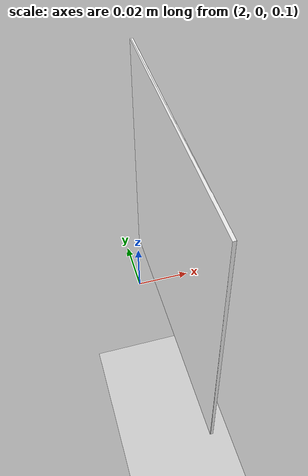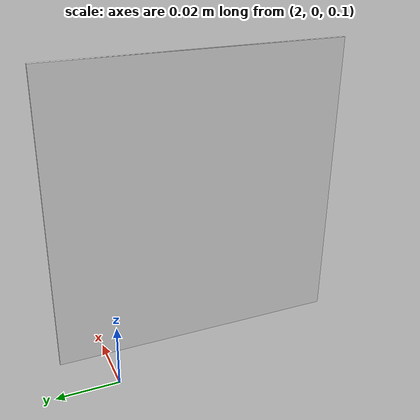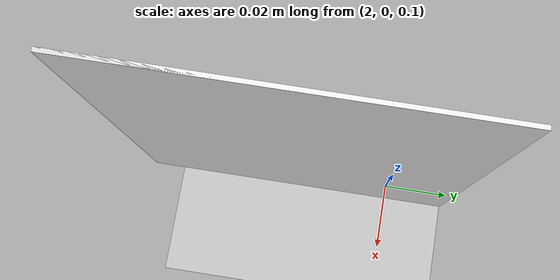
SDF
<sdf version="1.7">
 <world name="default">
  <scene><ambient>0.4 0.4 0.4 1</ambient><background>0.7 0.7 0.7 1</background><shadows>1</shadows></scene>
  <light name="sun" type="directional">
   <pose>0 0 10 0 -0 0</pose>
   <diffuse>0.8 0.8 0.8 1</diffuse>
   <specular>0.2 0.2 0.2 1</specular>
   <attenuation>
    <range>1000</range>
    <constant>0.9</constant>
    <linear>0.01</linear>
    <quadratic>0.001</quadratic>
   </attenuation>
   <direction>-0.5 0.1 -0.9</direction>
   <spot><inner_angle>0</inner_angle><outer_angle>0</outer_angle><falloff>0</falloff></spot>
  </light>
  <model name="ground_plane">
   <static>1</static>
   <link name="link">
    <collision name="collision">
     <geometry><plane><normal>0 0 1</normal><size>100 100</size></plane></geometry>
     <surface>
      <contact><collide_bitmask>65535</collide_bitmask></contact>
      <friction><ode><mu>100</mu><mu2>50</mu2></ode></friction>
     </surface>
    </collision>
    <visual name="visual">
     <cast_shadows>0</cast_shadows>
     <geometry><plane><normal>0 0 1</normal><size>100 100</size></plane></geometry>
     <material>
      <script><uri>file://media/materials/scripts/gazebo.material</uri><name>Gazebo/Grey</name></script>
     </material>
    </visual>
   </link>
  </model>
  <physics type="ode">
   <real_time_update_rate>1000</real_time_update_rate>
   <max_step_size>0.001</max_step_size>
   <real_time_factor>1</real_time_factor>
   <ode>
    <solver>
     <type>quick</type>
     <iters>150</iters>
     <precon_iters>0</precon_iters>
     <sor>1.4</sor>
     <use_dynamic_moi_rescaling>1</use_dynamic_moi_rescaling>
    </solver>
    <constraints>
     <cfm>1e-05</cfm>
     <erp>0.2</erp>
     <contact_max_correcting_vel>2000</contact_max_correcting_vel>
     <contact_surface_layer>0.01</contact_surface_layer>
    </constraints>
   </ode>
  </physics>
  <gravity>0 0 -9.8</gravity>
  <magnetic_field>6e-06 2.3e-05 -4.2e-05</magnetic_field>
  <atmosphere type="adiabatic"/>
  <spherical_coordinates>
   <surface_model>EARTH_WGS84</surface_model>
   <latitude_deg>0</latitude_deg>
   <longitude_deg>0</longitude_deg>
   <elevation>0</elevation>
   <heading_deg>0</heading_deg>
  </spherical_coordinates>
  <model name="aruco_visual_marker_1">
   <link name="marker">
    <visual name="visual">
     <geometry><box><size>0.09 0.09 0.001</size></box></geometry>
     <material>
      <script>
       <uri>model://aruco_visual_marker_1/materials/scripts</uri>
       <uri>model://aruco_visual_marker_1/materials/textures</uri>
       <name>ArucoVisualMarker1/Marker</name>
      </script>
      <ambient>1 1 1 1</ambient>
      <diffuse>1 1 1 1</diffuse>
      <specular>0 0 0 1</specular>
      <emissive>1 1 1 0</emissive>
      <shader type="vertex"><normal_map>__default__</normal_map></shader>
     </material>
    </visual>
    <collision name="collision"><geometry><box><size>0.09 0.09 0.001</size></box></geometry></collision>
   </link>
   <link name="marker_pad">
    <pose relative_to="marker">0 0 -1e-05 0 -0 0</pose>
    <visual name="visual">
     <geometry><box><size>0.09 0.09 0.001</size></box></geometry>
     <material>
      <lighting>1</lighting>
      <script><uri>file://media/materials/scripts/gazebo.material</uri><name>Gazebo/White</name></script>
      <ambient>0.3 0.3 0.3 1</ambient>
      <diffuse>0.7 0.7 0.7 1</diffuse>
      <specular>0.01 0.01 0.01 1</specular>
      <emissive>1 1 1 0</emissive>
      <shader type="vertex"><normal_map>__default__</normal_map></shader>
     </material>
    </visual>
    <collision name="collision"><geometry><box><size>0.09 0.09 0.001</size></box></geometry></collision>
   </link>
   <joint name="marker_JOINT_marker_pad" type="revolute">
    <parent>marker</parent>
    <child>marker_pad</child>
    <axis>
     <xyz>0 0 1</xyz>
     <limit><upper>0</upper><lower>0</lower></limit>
     <dynamics><spring_reference>0</spring_reference><spring_stiffness>0</spring_stiffness></dynamics>
    </axis>
   </joint>
   <static>1</static>
   <pose>2.00467 -0.028082 0.153701 1.57461 -0.001195 -1.5708</pose>
  </model>
 </world>
</sdf>
